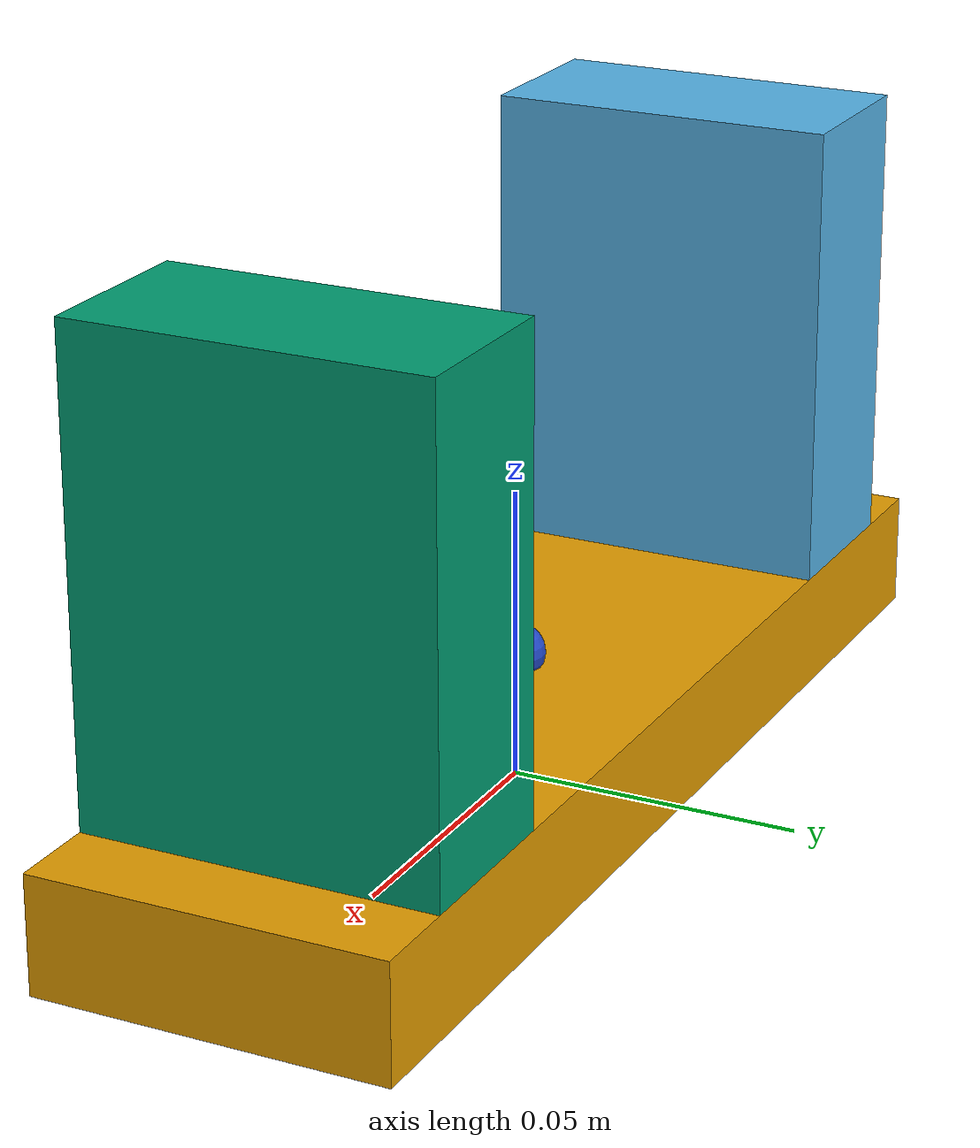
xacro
<?xml version="1.0"?>
<robot xmlns:xacro="http://www.ros.org/wiki/xacro">

    <!-- 1. 夹持器底座 -->
    <link name="gripper_base_link">
        <visual>
            <geometry><box size="0.2 0.06 0.02" /></geometry>
            <origin xyz="0 0 0.01" rpy="0 0 0" />
        </visual>
        <collision>
            <geometry><box size="0.2 0.06 0.02" /></geometry>
            <origin xyz="0 0 0.01" rpy="0 0 0" />
        </collision>
        <inertial>
            <mass value="0.5" />
            <origin xyz="0 0 0.01" />
            <inertia ixx="0.00016667" ixy="0" ixz="0" iyy="0.00168333" iyz="0" izz="0.00181667" />
        </inertial>
    </link>

    <!-- 2. 左手指 -->
    <link name="gripper_left_finger_link">
        <visual>
            <geometry><box size="0.03 0.06 0.08" /></geometry>
            <origin xyz="0 0 0.04" rpy="0 0 0" />
        </visual>
        <collision>
            <geometry><box size="0.03 0.06 0.08" /></geometry>
            <origin xyz="0 0 0.04" rpy="0 0 0" />
        </collision>
        <inertial>
            <mass value="0.12" />
            <origin xyz="0 0 0.04" />
            <inertia ixx="0.0001" ixy="0" ixz="0" iyy="0.000073" iyz="0" izz="0.000045" />
        </inertial>
    </link>

    <!-- 3. 右手指 -->
    <link name="gripper_right_finger_link">
        <visual>
            <geometry><box size="0.03 0.06 0.08" /></geometry>
            <origin xyz="0 0 0.04" rpy="0 0 0" />
        </visual>
        <collision>
            <geometry><box size="0.03 0.06 0.08" /></geometry>
            <origin xyz="0 0 0.04" rpy="0 0 0" />
        </collision>
        <inertial>
            <mass value="0.12" />
            <origin xyz="0 0 0.04" />
            <inertia ixx="0.0001" ixy="0" ixz="0" iyy="0.000073" iyz="0" izz="0.000045" />
        </inertial>
    </link>

    <!-- attach_link -->
    <link name="attach_link">
    <visual>
        <geometry><sphere radius="0.005" /></geometry>
        <origin xyz="0 0 0" rpy="0 0 0" />
        <material name="blue" />
    </visual>
    <inertial>
        <mass value="0.001" />
        <origin xyz="0 0 0" />
        <inertia ixx="0.000001" ixy="0" ixz="0" iyy="0.000001" iyz="0" izz="0.000001" />
    </inertial>
    </link>

    <!-- finger属性 -->
    <gazebo reference="gripper_left_finger_link">
        <mu1>4.0</mu1>
        <mu2>4.0</mu2>
        <kp>10000.0</kp>
        <kd>100.0</kd>
        <minDepth>0.001</minDepth>
        <maxVel>0.01</maxVel>
    </gazebo>
    <gazebo reference="gripper_right_finger_link">
        <mu1>10.0</mu1>
        <mu2>10.0</mu2>
        <kp>100000.0</kp>
        <kd>100.0</kd>
        <minDepth>0.001</minDepth>
        <maxVel>0.01</maxVel>
    </gazebo>

    <!-- 4. 关节定义 (现在是两个互相独立的平移关节) -->
    <joint name="gripper_left_finger_joint" type="prismatic">
        <parent link="gripper_base_link" />
        <child link="gripper_left_finger_link" />
        <origin xyz="-0.07 0 0.02" rpy="0 0 0" />
        <axis xyz="1 0 0" />
        <limit effort="40.0" velocity="0.05" lower="0.0" upper="0.04" />
        <dynamics damping="20.0" friction="2.0" />
    </joint>

    <joint name="gripper_right_finger_joint" type="prismatic">
        <parent link="gripper_base_link" />
        <child link="gripper_right_finger_link" />
        <origin xyz="0.07 0 0.02" rpy="0 0 0" />
        <axis xyz="1 0 0" />
        <limit effort="40.0" velocity="0.05" lower="-0.04" upper="0.0" />
        <dynamics damping="20.0" friction="2.0" />
    </joint>

    <joint name="gripper_attach_joint" type="fixed">
        <parent link="gripper_base_link" />
        <child link="attach_link" />
        <origin xyz="0 0 0.022" rpy="0 0 0" />
    </joint>

    <gazebo reference="gripper_attach_joint">
        <preserveFixedJoint>true</preserveFixedJoint>
    </gazebo>

</robot>
